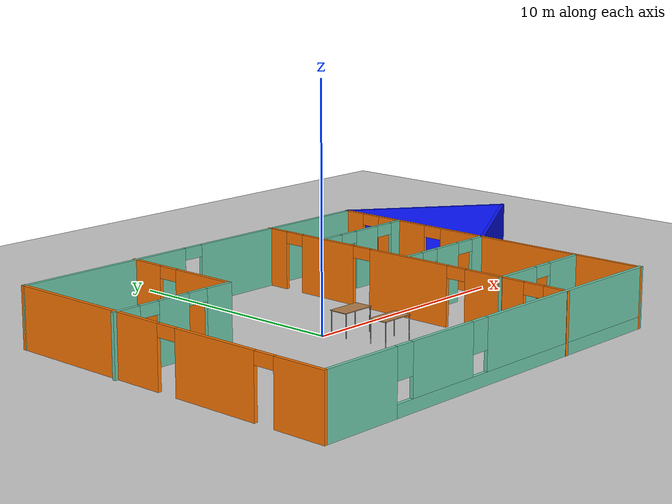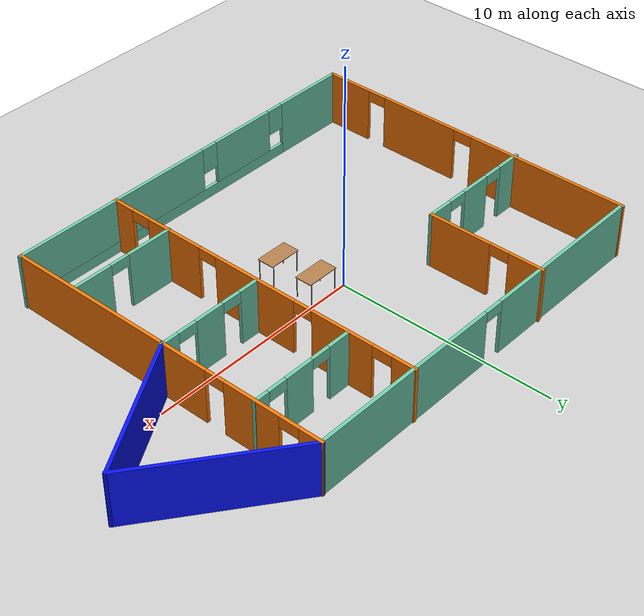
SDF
<sdf version="1.6">
 <world name="default">
  <model name="ground_plane">
   <static>1</static>
   <link name="link">
    <collision name="collision">
     <geometry><plane><normal>0 0 1</normal><size>100 100</size></plane></geometry>
     <surface>
      <contact><collide_bitmask>65535</collide_bitmask></contact>
      <friction><ode><mu>100</mu><mu2>50</mu2></ode></friction>
     </surface>
    </collision>
    <visual name="visual">
     <cast_shadows>0</cast_shadows>
     <geometry><plane><normal>0 0 1</normal><size>100 100</size></plane></geometry>
     <material>
      <script><uri>file://media/materials/scripts/gazebo.material</uri><name>Gazebo/Grey</name></script>
     </material>
    </visual>
   </link>
  </model>
  <model name="Building">
   <pose>2.98663 -0.6582 0 0 -0 0</pose>
   <link name="Wall_0">
    <pose>-2.80813 7.61358 0 0 0 -0.001099</pose>
    <visual name="Wall_0_Visual_0">
     <pose>-4.97895 0 1.25 0 -0 0</pose>
     <geometry><box><size>8.08618 0.15 2.5</size></box></geometry>
     <material>
      <script><uri>file://media/materials/scripts/gazebo.material</uri><name>Gazebo/Grey</name></script>
      <ambient>0.435294 0.796078 0.67451 1</ambient>
     </material>
     <meta><layer>0</layer></meta>
    </visual>
    <collision name="Wall_0_Collision_0">
     <geometry><box><size>8.08618 0.15 2.5</size></box></geometry>
     <pose>-4.97895 0 1.25 0 -0 0</pose>
    </collision>
    <visual name="Wall_0_Visual_1">
     <pose>4.49309 0 1.25 0 -0 0</pose>
     <geometry><box><size>9.0579 0.15 2.5</size></box></geometry>
     <material>
      <script><uri>file://media/materials/scripts/gazebo.material</uri><name>Gazebo/Grey</name></script>
      <ambient>0.435294 0.796078 0.67451 1</ambient>
     </material>
     <meta><layer>0</layer></meta>
    </visual>
    <collision name="Wall_0_Collision_1">
     <geometry><box><size>9.0579 0.15 2.5</size></box></geometry>
     <pose>4.49309 0 1.25 0 -0 0</pose>
    </collision>
    <visual name="Wall_0_Visual_2">
     <pose>-0.485857 0 2.25 0 -0 0</pose>
     <geometry><box><size>0.9 0.15 0.5</size></box></geometry>
     <material>
      <script><uri>file://media/materials/scripts/gazebo.material</uri><name>Gazebo/Grey</name></script>
      <ambient>0.435294 0.796078 0.67451 1</ambient>
     </material>
     <meta><layer>0</layer></meta>
    </visual>
    <collision name="Wall_0_Collision_2">
     <geometry><box><size>0.9 0.15 0.5</size></box></geometry>
     <pose>-0.485857 0 2.25 0 -0 0</pose>
    </collision>
   </link>
   <link name="Wall_11">
    <pose>3.73817 4.58148 0 0 -0 0</pose>
    <visual name="Wall_11_Visual_0">
     <pose>-1.93324 0 1.25 0 -0 0</pose>
     <geometry><box><size>1.13352 0.15 2.5</size></box></geometry>
     <material>
      <script><uri>file://media/materials/scripts/gazebo.material</uri><name>Gazebo/Grey</name></script>
      <ambient>0.435294 0.796078 0.67451 1</ambient>
     </material>
     <meta><layer>0</layer></meta>
    </visual>
    <collision name="Wall_11_Collision_0">
     <geometry><box><size>1.13352 0.15 2.5</size></box></geometry>
     <pose>-1.93324 0 1.25 0 -0 0</pose>
    </collision>
    <visual name="Wall_11_Visual_1">
     <pose>0.209239 0 1.25 0 -0 0</pose>
     <geometry><box><size>1.35144 0.15 2.5</size></box></geometry>
     <material>
      <script><uri>file://media/materials/scripts/gazebo.material</uri><name>Gazebo/Grey</name></script>
      <ambient>0.435294 0.796078 0.67451 1</ambient>
     </material>
     <meta><layer>0</layer></meta>
    </visual>
    <collision name="Wall_11_Collision_1">
     <geometry><box><size>1.35144 0.15 2.5</size></box></geometry>
     <pose>0.209239 0 1.25 0 -0 0</pose>
    </collision>
    <visual name="Wall_11_Visual_2">
     <pose>2.14248 0 1.25 0 -0 0</pose>
     <geometry><box><size>0.71504 0.15 2.5</size></box></geometry>
     <material>
      <script><uri>file://media/materials/scripts/gazebo.material</uri><name>Gazebo/Grey</name></script>
      <ambient>0.435294 0.796078 0.67451 1</ambient>
     </material>
     <meta><layer>0</layer></meta>
    </visual>
    <collision name="Wall_11_Collision_2">
     <geometry><box><size>0.71504 0.15 2.5</size></box></geometry>
     <pose>2.14248 0 1.25 0 -0 0</pose>
    </collision>
    <visual name="Wall_11_Visual_3">
     <pose>-0.916481 0 2.25 0 -0 0</pose>
     <geometry><box><size>0.9 0.15 0.5</size></box></geometry>
     <material>
      <script><uri>file://media/materials/scripts/gazebo.material</uri><name>Gazebo/Grey</name></script>
      <ambient>0.435294 0.796078 0.67451 1</ambient>
     </material>
     <meta><layer>0</layer></meta>
    </visual>
    <collision name="Wall_11_Collision_3">
     <geometry><box><size>0.9 0.15 0.5</size></box></geometry>
     <pose>-0.916481 0 2.25 0 -0 0</pose>
    </collision>
    <visual name="Wall_11_Visual_4">
     <pose>1.33496 0 2.25 0 -0 0</pose>
     <geometry><box><size>0.9 0.15 0.5</size></box></geometry>
     <material>
      <script><uri>file://media/materials/scripts/gazebo.material</uri><name>Gazebo/Grey</name></script>
      <ambient>0.435294 0.796078 0.67451 1</ambient>
     </material>
     <meta><layer>0</layer></meta>
    </visual>
    <collision name="Wall_11_Collision_4">
     <geometry><box><size>0.9 0.15 0.5</size></box></geometry>
     <pose>1.33496 0 2.25 0 -0 0</pose>
    </collision>
   </link>
   <link name="Wall_13">
    <pose>3.77862 0.050456 0 0 -0 0</pose>
    <visual name="Wall_13_Visual_0">
     <pose>-2.02383 0 1.25 0 -0 0</pose>
     <geometry><box><size>0.952349 0.15 2.5</size></box></geometry>
     <material>
      <script><uri>file://media/materials/scripts/gazebo.material</uri><name>Gazebo/Grey</name></script>
      <ambient>0.435294 0.796078 0.67451 1</ambient>
     </material>
     <meta><layer>0</layer></meta>
    </visual>
    <collision name="Wall_13_Collision_0">
     <geometry><box><size>0.952349 0.15 2.5</size></box></geometry>
     <pose>-2.02383 0 1.25 0 -0 0</pose>
    </collision>
    <visual name="Wall_13_Visual_1">
     <pose>0.041638 0 1.25 0 -0 0</pose>
     <geometry><box><size>1.37858 0.15 2.5</size></box></geometry>
     <material>
      <script><uri>file://media/materials/scripts/gazebo.material</uri><name>Gazebo/Grey</name></script>
      <ambient>0.435294 0.796078 0.67451 1</ambient>
     </material>
     <meta><layer>0</layer></meta>
    </visual>
    <collision name="Wall_13_Collision_1">
     <geometry><box><size>1.37858 0.15 2.5</size></box></geometry>
     <pose>0.041638 0 1.25 0 -0 0</pose>
    </collision>
    <visual name="Wall_13_Visual_2">
     <pose>2.06546 0 1.25 0 -0 0</pose>
     <geometry><box><size>0.869072 0.15 2.5</size></box></geometry>
     <material>
      <script><uri>file://media/materials/scripts/gazebo.material</uri><name>Gazebo/Grey</name></script>
      <ambient>0.435294 0.796078 0.67451 1</ambient>
     </material>
     <meta><layer>0</layer></meta>
    </visual>
    <collision name="Wall_13_Collision_2">
     <geometry><box><size>0.869072 0.15 2.5</size></box></geometry>
     <pose>2.06546 0 1.25 0 -0 0</pose>
    </collision>
    <visual name="Wall_13_Visual_3">
     <pose>-1.09765 0 2.25 0 -0 0</pose>
     <geometry><box><size>0.9 0.15 0.5</size></box></geometry>
     <material>
      <script><uri>file://media/materials/scripts/gazebo.material</uri><name>Gazebo/Grey</name></script>
      <ambient>0.435294 0.796078 0.67451 1</ambient>
     </material>
     <meta><layer>0</layer></meta>
    </visual>
    <collision name="Wall_13_Collision_3">
     <geometry><box><size>0.9 0.15 0.5</size></box></geometry>
     <pose>-1.09765 0 2.25 0 -0 0</pose>
    </collision>
    <visual name="Wall_13_Visual_4">
     <pose>1.18093 0 2.25 0 -0 0</pose>
     <geometry><box><size>0.9 0.15 0.5</size></box></geometry>
     <material>
      <script><uri>file://media/materials/scripts/gazebo.material</uri><name>Gazebo/Grey</name></script>
      <ambient>0.435294 0.796078 0.67451 1</ambient>
     </material>
     <meta><layer>0</layer></meta>
    </visual>
    <collision name="Wall_13_Collision_4">
     <geometry><box><size>0.9 0.15 0.5</size></box></geometry>
     <pose>1.18093 0 2.25 0 -0 0</pose>
    </collision>
   </link>
   <link name="Wall_15">
    <pose>3.67214 -4.70387 0 0 -0 0</pose>
    <visual name="Wall_15_Visual_0">
     <pose>-1.37973 0 1.25 0 -0 0</pose>
     <geometry><box><size>2.24055 0.15 2.5</size></box></geometry>
     <material>
      <script><uri>file://media/materials/scripts/gazebo.material</uri><name>Gazebo/Grey</name></script>
      <ambient>0.435294 0.796078 0.67451 1</ambient>
     </material>
     <meta><layer>0</layer></meta>
    </visual>
    <collision name="Wall_15_Collision_0">
     <geometry><box><size>2.24055 0.15 2.5</size></box></geometry>
     <pose>-1.37973 0 1.25 0 -0 0</pose>
    </collision>
    <visual name="Wall_15_Visual_1">
     <pose>1.57028 0 1.25 0 -0 0</pose>
     <geometry><box><size>1.85945 0.15 2.5</size></box></geometry>
     <material>
      <script><uri>file://media/materials/scripts/gazebo.material</uri><name>Gazebo/Grey</name></script>
      <ambient>0.435294 0.796078 0.67451 1</ambient>
     </material>
     <meta><layer>0</layer></meta>
    </visual>
    <collision name="Wall_15_Collision_1">
     <geometry><box><size>1.85945 0.15 2.5</size></box></geometry>
     <pose>1.57028 0 1.25 0 -0 0</pose>
    </collision>
    <visual name="Wall_15_Visual_2">
     <pose>0.190549 0 2.25 0 -0 0</pose>
     <geometry><box><size>0.9 0.15 0.5</size></box></geometry>
     <material>
      <script><uri>file://media/materials/scripts/gazebo.material</uri><name>Gazebo/Grey</name></script>
      <ambient>0.435294 0.796078 0.67451 1</ambient>
     </material>
     <meta><layer>0</layer></meta>
    </visual>
    <collision name="Wall_15_Collision_2">
     <geometry><box><size>0.9 0.15 0.5</size></box></geometry>
     <pose>0.190549 0 2.25 0 -0 0</pose>
    </collision>
   </link>
   <link name="Wall_17">
    <collision name="Wall_17_Collision">
     <geometry><box><size>6.75 0.15 2.5</size></box></geometry>
     <pose>0 0 1.25 0 -0 0</pose>
    </collision>
    <visual name="Wall_17_Visual">
     <pose>0 0 1.25 0 -0 0</pose>
     <geometry><box><size>6.75 0.15 2.5</size></box></geometry>
     <material>
      <script><uri>file://media/materials/scripts/gazebo.material</uri><name>Gazebo/Grey</name></script>
      <ambient>0.0313726 0.0784314 1 1</ambient>
     </material>
     <meta><layer>0</layer></meta>
    </visual>
    <pose>9.00455 1.66326 0 0 -0 0.523599</pose>
   </link>
   <link name="Wall_18">
    <collision name="Wall_18_Collision">
     <geometry><box><size>7.31911 0.15 2.5</size></box></geometry>
     <pose>0 0 1.25 0 -0 0</pose>
    </collision>
    <visual name="Wall_18_Visual">
     <pose>0 0 1.25 0 -0 0</pose>
     <geometry><box><size>7.31911 0.15 2.5</size></box></geometry>
     <material>
      <script><uri>file://media/materials/scripts/gazebo.material</uri><name>Gazebo/Grey</name></script>
      <ambient>0.0313726 0.0784314 1 1</ambient>
     </material>
     <meta><layer>0</layer></meta>
    </visual>
    <pose>9.00067 5.47181 0 0 -0 2.49536</pose>
   </link>
   <link name="Wall_2">
    <pose>-11.7501 0.006796 0 0 0 -1.57013</pose>
    <visual name="Wall_2_Visual_0">
     <pose>-3.93136 0 1.25 0 -0 0</pose>
     <geometry><box><size>7.57372 0.15 2.5</size></box></geometry>
     <material>
      <script><uri>file://media/materials/scripts/gazebo.material</uri><name>Gazebo/Grey</name></script>
      <ambient>0.996078 0.47451 0.0196078 1</ambient>
     </material>
     <meta><layer>0</layer></meta>
    </visual>
    <collision name="Wall_2_Collision_0">
     <geometry><box><size>7.57372 0.15 2.5</size></box></geometry>
     <pose>-3.93136 0 1.25 0 -0 0</pose>
    </collision>
    <visual name="Wall_2_Visual_1">
     <pose>2.66282 0 1.25 0 -0 0</pose>
     <geometry><box><size>3.81463 0.15 2.5</size></box></geometry>
     <material>
      <script><uri>file://media/materials/scripts/gazebo.material</uri><name>Gazebo/Grey</name></script>
      <ambient>0.996078 0.47451 0.0196078 1</ambient>
     </material>
     <meta><layer>0</layer></meta>
    </visual>
    <collision name="Wall_2_Collision_1">
     <geometry><box><size>3.81463 0.15 2.5</size></box></geometry>
     <pose>2.66282 0 1.25 0 -0 0</pose>
    </collision>
    <visual name="Wall_2_Visual_2">
     <pose>6.59418 0 1.25 0 -0 0</pose>
     <geometry><box><size>2.24808 0.15 2.5</size></box></geometry>
     <material>
      <script><uri>file://media/materials/scripts/gazebo.material</uri><name>Gazebo/Grey</name></script>
      <ambient>0.996078 0.47451 0.0196078 1</ambient>
     </material>
     <meta><layer>0</layer></meta>
    </visual>
    <collision name="Wall_2_Collision_2">
     <geometry><box><size>2.24808 0.15 2.5</size></box></geometry>
     <pose>6.59418 0 1.25 0 -0 0</pose>
    </collision>
    <visual name="Wall_2_Visual_3">
     <pose>0.305505 0 2.25 0 -0 0</pose>
     <geometry><box><size>0.9 0.15 0.5</size></box></geometry>
     <material>
      <script><uri>file://media/materials/scripts/gazebo.material</uri><name>Gazebo/Grey</name></script>
      <ambient>0.996078 0.47451 0.0196078 1</ambient>
     </material>
     <meta><layer>0</layer></meta>
    </visual>
    <collision name="Wall_2_Collision_3">
     <geometry><box><size>0.9 0.15 0.5</size></box></geometry>
     <pose>0.305505 0 2.25 0 -0 0</pose>
    </collision>
    <visual name="Wall_2_Visual_4">
     <pose>5.02014 0 2.25 0 -0 0</pose>
     <geometry><box><size>0.9 0.15 0.5</size></box></geometry>
     <material>
      <script><uri>file://media/materials/scripts/gazebo.material</uri><name>Gazebo/Grey</name></script>
      <ambient>0.996078 0.47451 0.0196078 1</ambient>
     </material>
     <meta><layer>0</layer></meta>
    </visual>
    <collision name="Wall_2_Collision_4">
     <geometry><box><size>0.9 0.15 0.5</size></box></geometry>
     <pose>5.02014 0 2.25 0 -0 0</pose>
    </collision>
   </link>
   <link name="Wall_3">
    <pose>-2.75147 -7.66637 0 0 0 -0.003347</pose>
    <visual name="Wall_3_Visual_0">
     <pose>-7.29617 0 1.25 0 -0 0</pose>
     <geometry><box><size>3.45183 0.15 2.5</size></box></geometry>
     <material>
      <script><uri>file://media/materials/scripts/gazebo.material</uri><name>Gazebo/Grey</name></script>
      <ambient>0.435294 0.796078 0.67451 1</ambient>
     </material>
     <meta><layer>0</layer></meta>
    </visual>
    <collision name="Wall_3_Collision_0">
     <geometry><box><size>3.45183 0.15 2.5</size></box></geometry>
     <pose>-7.29617 0 1.25 0 -0 0</pose>
    </collision>
    <visual name="Wall_3_Visual_1">
     <pose>1.72591 0 0.25 0 -0 0</pose>
     <geometry><box><size>14.5923 0.15 0.5</size></box></geometry>
     <material>
      <script><uri>file://media/materials/scripts/gazebo.material</uri><name>Gazebo/Grey</name></script>
      <ambient>0.435294 0.796078 0.67451 1</ambient>
     </material>
     <meta><layer>0</layer></meta>
    </visual>
    <collision name="Wall_3_Collision_1">
     <geometry><box><size>14.5923 0.15 0.5</size></box></geometry>
     <pose>1.72591 0 0.25 0 -0 0</pose>
    </collision>
    <visual name="Wall_3_Visual_2">
     <pose>-3.16851 0 1.5 0 -0 0</pose>
     <geometry><box><size>3.2035 0.15 2</size></box></geometry>
     <material>
      <script><uri>file://media/materials/scripts/gazebo.material</uri><name>Gazebo/Grey</name></script>
      <ambient>0.435294 0.796078 0.67451 1</ambient>
     </material>
     <meta><layer>0</layer></meta>
    </visual>
    <collision name="Wall_3_Collision_2">
     <geometry><box><size>3.2035 0.15 2</size></box></geometry>
     <pose>-3.16851 0 1.5 0 -0 0</pose>
    </collision>
    <visual name="Wall_3_Visual_3">
     <pose>4.12766 0 1.5 0 -0 0</pose>
     <geometry><box><size>9.78884 0.15 2</size></box></geometry>
     <material>
      <script><uri>file://media/materials/scripts/gazebo.material</uri><name>Gazebo/Grey</name></script>
      <ambient>0.435294 0.796078 0.67451 1</ambient>
     </material>
     <meta><layer>0</layer></meta>
    </visual>
    <collision name="Wall_3_Collision_3">
     <geometry><box><size>9.78884 0.15 2</size></box></geometry>
     <pose>4.12766 0 1.5 0 -0 0</pose>
    </collision>
    <visual name="Wall_3_Visual_4">
     <pose>-5.17026 0 1.9 0 -0 0</pose>
     <geometry><box><size>0.8 0.15 1.2</size></box></geometry>
     <material>
      <script><uri>file://media/materials/scripts/gazebo.material</uri><name>Gazebo/Grey</name></script>
      <ambient>0.435294 0.796078 0.67451 1</ambient>
     </material>
     <meta><layer>0</layer></meta>
    </visual>
    <collision name="Wall_3_Collision_4">
     <geometry><box><size>0.8 0.15 1.2</size></box></geometry>
     <pose>-5.17026 0 1.9 0 -0 0</pose>
    </collision>
    <visual name="Wall_3_Visual_5">
     <pose>-1.16676 0 1.9 0 -0 0</pose>
     <geometry><box><size>0.8 0.15 1.2</size></box></geometry>
     <material>
      <script><uri>file://media/materials/scripts/gazebo.material</uri><name>Gazebo/Grey</name></script>
      <ambient>0.435294 0.796078 0.67451 1</ambient>
     </material>
     <meta><layer>0</layer></meta>
    </visual>
    <collision name="Wall_3_Collision_5">
     <geometry><box><size>0.8 0.15 1.2</size></box></geometry>
     <pose>-1.16676 0 1.9 0 -0 0</pose>
    </collision>
   </link>
   <link name="Wall_4">
    <pose>6.14398 -0.032979 0 0 -0 1.57146</pose>
    <visual name="Wall_4_Visual_0">
     <pose>-2.74852 0 1.25 0 -0 0</pose>
     <geometry><box><size>9.97962 0.15 2.5</size></box></geometry>
     <material>
      <script><uri>file://media/materials/scripts/gazebo.material</uri><name>Gazebo/Grey</name></script>
      <ambient>0.996078 0.47451 0.0196078 1</ambient>
     </material>
     <meta><layer>0</layer></meta>
    </visual>
    <collision name="Wall_4_Collision_0">
     <geometry><box><size>9.97962 0.15 2.5</size></box></geometry>
     <pose>-2.74852 0 1.25 0 -0 0</pose>
    </collision>
    <visual name="Wall_4_Visual_1">
     <pose>4.45026 0 1.25 0 -0 0</pose>
     <geometry><box><size>2.61795 0.15 2.5</size></box></geometry>
     <material>
      <script><uri>file://media/materials/scripts/gazebo.material</uri><name>Gazebo/Grey</name></script>
      <ambient>0.996078 0.47451 0.0196078 1</ambient>
     </material>
     <meta><layer>0</layer></meta>
    </visual>
    <collision name="Wall_4_Collision_1">
     <geometry><box><size>2.61795 0.15 2.5</size></box></geometry>
     <pose>4.45026 0 1.25 0 -0 0</pose>
    </collision>
    <visual name="Wall_4_Visual_2">
     <pose>7.19878 0 1.25 0 -0 0</pose>
     <geometry><box><size>1.0791 0.15 2.5</size></box></geometry>
     <material>
      <script><uri>file://media/materials/scripts/gazebo.material</uri><name>Gazebo/Grey</name></script>
      <ambient>0.996078 0.47451 0.0196078 1</ambient>
     </material>
     <meta><layer>0</layer></meta>
    </visual>
    <collision name="Wall_4_Collision_2">
     <geometry><box><size>1.0791 0.15 2.5</size></box></geometry>
     <pose>7.19878 0 1.25 0 -0 0</pose>
    </collision>
    <visual name="Wall_4_Visual_3">
     <pose>2.69129 0 2.25 0 -0 0</pose>
     <geometry><box><size>0.9 0.15 0.5</size></box></geometry>
     <material>
      <script><uri>file://media/materials/scripts/gazebo.material</uri><name>Gazebo/Grey</name></script>
      <ambient>0.996078 0.47451 0.0196078 1</ambient>
     </material>
     <meta><layer>0</layer></meta>
    </visual>
    <collision name="Wall_4_Collision_3">
     <geometry><box><size>0.9 0.15 0.5</size></box></geometry>
     <pose>2.69129 0 2.25 0 -0 0</pose>
    </collision>
    <visual name="Wall_4_Visual_4">
     <pose>6.20924 0 2.25 0 -0 0</pose>
     <geometry><box><size>0.9 0.15 0.5</size></box></geometry>
     <material>
      <script><uri>file://media/materials/scripts/gazebo.material</uri><name>Gazebo/Grey</name></script>
      <ambient>0.996078 0.47451 0.0196078 1</ambient>
     </material>
     <meta><layer>0</layer></meta>
    </visual>
    <collision name="Wall_4_Collision_4">
     <geometry><box><size>0.9 0.15 0.5</size></box></geometry>
     <pose>6.20924 0 2.25 0 -0 0</pose>
    </collision>
   </link>
   <link name="Wall_6">
    <pose>-6.29248 5.02156 0 0 0 -1.5708</pose>
    <visual name="Wall_6_Visual_0">
     <pose>-1.93476 0 1.25 0 -0 0</pose>
     <geometry><box><size>1.63049 0.15 2.5</size></box></geometry>
     <material>
      <script><uri>file://media/materials/scripts/gazebo.material</uri><name>Gazebo/Grey</name></script>
      <ambient>0.996078 0.47451 0.0196078 1</ambient>
     </material>
     <meta><layer>0</layer></meta>
    </visual>
    <collision name="Wall_6_Collision_0">
     <geometry><box><size>1.63049 0.15 2.5</size></box></geometry>
     <pose>-1.93476 0 1.25 0 -0 0</pose>
    </collision>
    <visual name="Wall_6_Visual_1">
     <pose>1.26524 0 1.25 0 -0 0</pose>
     <geometry><box><size>2.96951 0.15 2.5</size></box></geometry>
     <material>
      <script><uri>file://media/materials/scripts/gazebo.material</uri><name>Gazebo/Grey</name></script>
      <ambient>0.996078 0.47451 0.0196078 1</ambient>
     </material>
     <meta><layer>0</layer></meta>
    </visual>
    <collision name="Wall_6_Collision_1">
     <geometry><box><size>2.96951 0.15 2.5</size></box></geometry>
     <pose>1.26524 0 1.25 0 -0 0</pose>
    </collision>
    <visual name="Wall_6_Visual_2">
     <pose>-0.669512 0 2.25 0 -0 0</pose>
     <geometry><box><size>0.9 0.15 0.5</size></box></geometry>
     <material>
      <script><uri>file://media/materials/scripts/gazebo.material</uri><name>Gazebo/Grey</name></script>
      <ambient>0.996078 0.47451 0.0196078 1</ambient>
     </material>
     <meta><layer>0</layer></meta>
    </visual>
    <collision name="Wall_6_Collision_2">
     <geometry><box><size>0.9 0.15 0.5</size></box></geometry>
     <pose>-0.669512 0 2.25 0 -0 0</pose>
    </collision>
   </link>
   <link name="Wall_7">
    <pose>-9.09248 2.34656 0 0 -0 3.14159</pose>
    <visual name="Wall_7_Visual_0">
     <pose>-2.24817 0 1.25 0 -0 0</pose>
     <geometry><box><size>1.25366 0.15 2.5</size></box></geometry>
     <material>
      <script><uri>file://media/materials/scripts/gazebo.material</uri><name>Gazebo/Grey</name></script>
      <ambient>0.435294 0.796078 0.67451 1</ambient>
     </material>
     <meta><layer>0</layer></meta>
    </visual>
    <collision name="Wall_7_Collision_0">
     <geometry><box><size>1.25366 0.15 2.5</size></box></geometry>
     <pose>-2.24817 0 1.25 0 -0 0</pose>
    </collision>
    <visual name="Wall_7_Visual_1">
     <pose>0.006381 0 1.25 0 -0 0</pose>
     <geometry><box><size>1.45545 0.15 2.5</size></box></geometry>
     <material>
      <script><uri>file://media/materials/scripts/gazebo.material</uri><name>Gazebo/Grey</name></script>
      <ambient>0.435294 0.796078 0.67451 1</ambient>
     </material>
     <meta><layer>0</layer></meta>
    </visual>
    <collision name="Wall_7_Collision_1">
     <geometry><box><size>1.45545 0.15 2.5</size></box></geometry>
     <pose>0.006381 0 1.25 0 -0 0</pose>
    </collision>
    <visual name="Wall_7_Visual_2">
     <pose>2.25455 0 1.25 0 -0 0</pose>
     <geometry><box><size>1.2409 0.15 2.5</size></box></geometry>
     <material>
      <script><uri>file://media/materials/scripts/gazebo.material</uri><name>Gazebo/Grey</name></script>
      <ambient>0.435294 0.796078 0.67451 1</ambient>
     </material>
     <meta><layer>0</layer></meta>
    </visual>
    <collision name="Wall_7_Collision_2">
     <geometry><box><size>1.2409 0.15 2.5</size></box></geometry>
     <pose>2.25455 0 1.25 0 -0 0</pose>
    </collision>
    <visual name="Wall_7_Visual_3">
     <pose>-1.17134 0 2.25 0 -0 0</pose>
     <geometry><box><size>0.9 0.15 0.5</size></box></geometry>
     <material>
      <script><uri>file://media/materials/scripts/gazebo.material</uri><name>Gazebo/Grey</name></script>
      <ambient>0.435294 0.796078 0.67451 1</ambient>
     </material>
     <meta><layer>0</layer></meta>
    </visual>
    <collision name="Wall_7_Collision_3">
     <geometry><box><size>0.9 0.15 0.5</size></box></geometry>
     <pose>-1.17134 0 2.25 0 -0 0</pose>
    </collision>
    <visual name="Wall_7_Visual_4">
     <pose>1.1841 0 2.25 0 -0 0</pose>
     <geometry><box><size>0.9 0.15 0.5</size></box></geometry>
     <material>
      <script><uri>file://media/materials/scripts/gazebo.material</uri><name>Gazebo/Grey</name></script>
      <ambient>0.435294 0.796078 0.67451 1</ambient>
     </material>
     <meta><layer>0</layer></meta>
    </visual>
    <collision name="Wall_7_Collision_4">
     <geometry><box><size>0.9 0.15 0.5</size></box></geometry>
     <pose>1.1841 0 2.25 0 -0 0</pose>
    </collision>
   </link>
   <link name="Wall_9">
    <pose>1.27271 -0.018895 0 0 0 -1.5708</pose>
    <visual name="Wall_9_Visual_0">
     <pose>-7.19971 0 1.25 0 -0 0</pose>
     <geometry><box><size>1.10059 0.15 2.5</size></box></geometry>
     <material>
      <script><uri>file://media/materials/scripts/gazebo.material</uri><name>Gazebo/Grey</name></script>
      <ambient>0.996078 0.47451 0.0196078 1</ambient>
     </material>
     <meta><layer>0</layer></meta>
    </visual>
    <collision name="Wall_9_Collision_0">
     <geometry><box><size>1.10059 0.15 2.5</size></box></geometry>
     <pose>-7.19971 0 1.25 0 -0 0</pose>
    </collision>
    <visual name="Wall_9_Visual_1">
     <pose>-4.30282 0 1.25 0 -0 0</pose>
     <geometry><box><size>2.89319 0.15 2.5</size></box></geometry>
     <material>
      <script><uri>file://media/materials/scripts/gazebo.material</uri><name>Gazebo/Grey</name></script>
      <ambient>0.996078 0.47451 0.0196078 1</ambient>
     </material>
     <meta><layer>0</layer></meta>
    </visual>
    <collision name="Wall_9_Collision_1">
     <geometry><box><size>2.89319 0.15 2.5</size></box></geometry>
     <pose>-4.30282 0 1.25 0 -0 0</pose>
    </collision>
    <visual name="Wall_9_Visual_2">
     <pose>0.049995 0 1.25 0 -0 0</pose>
     <geometry><box><size>4.01244 0.15 2.5</size></box></geometry>
     <material>
      <script><uri>file://media/materials/scripts/gazebo.material</uri><name>Gazebo/Grey</name></script>
      <ambient>0.996078 0.47451 0.0196078 1</ambient>
     </material>
     <meta><layer>0</layer></meta>
    </visual>
    <collision name="Wall_9_Collision_2">
     <geometry><box><size>4.01244 0.15 2.5</size></box></geometry>
     <pose>0.049995 0 1.25 0 -0 0</pose>
    </collision>
    <visual name="Wall_9_Visual_3">
     <pose>4.35692 0 1.25 0 -0 0</pose>
     <geometry><box><size>2.80142 0.15 2.5</size></box></geometry>
     <material>
      <script><uri>file://media/materials/scripts/gazebo.material</uri><name>Gazebo/Grey</name></script>
      <ambient>0.996078 0.47451 0.0196078 1</ambient>
     </material>
     <meta><layer>0</layer></meta>
    </visual>
    <collision name="Wall_9_Collision_3">
     <geometry><box><size>2.80142 0.15 2.5</size></box></geometry>
     <pose>4.35692 0 1.25 0 -0 0</pose>
    </collision>
    <visual name="Wall_9_Visual_4">
     <pose>7.20381 0 1.25 0 -0 0</pose>
     <geometry><box><size>1.09237 0.15 2.5</size></box></geometry>
     <material>
      <script><uri>file://media/materials/scripts/gazebo.material</uri><name>Gazebo/Grey</name></script>
      <ambient>0.996078 0.47451 0.0196078 1</ambient>
     </material>
     <meta><layer>0</layer></meta>
    </visual>
    <collision name="Wall_9_Collision_4">
     <geometry><box><size>1.09237 0.15 2.5</size></box></geometry>
     <pose>7.20381 0 1.25 0 -0 0</pose>
    </collision>
    <visual name="Wall_9_Visual_5">
     <pose>-6.19941 0 2.25 0 -0 0</pose>
     <geometry><box><size>0.9 0.15 0.5</size></box></geometry>
     <material>
      <script><uri>file://media/materials/scripts/gazebo.material</uri><name>Gazebo/Grey</name></script>
      <ambient>0.996078 0.47451 0.0196078 1</ambient>
     </material>
     <meta><layer>0</layer></meta>
    </visual>
    <collision name="Wall_9_Collision_5">
     <geometry><box><size>0.9 0.15 0.5</size></box></geometry>
     <pose>-6.19941 0 2.25 0 -0 0</pose>
    </collision>
    <visual name="Wall_9_Visual_6">
     <pose>-2.40622 0 2.25 0 -0 0</pose>
     <geometry><box><size>0.9 0.15 0.5</size></box></geometry>
     <material>
      <script><uri>file://media/materials/scripts/gazebo.material</uri><name>Gazebo/Grey</name></script>
      <ambient>0.996078 0.47451 0.0196078 1</ambient>
     </material>
     <meta><layer>0</layer></meta>
    </visual>
    <collision name="Wall_9_Collision_6">
     <geometry><box><size>0.9 0.15 0.5</size></box></geometry>
     <pose>-2.40622 0 2.25 0 -0 0</pose>
    </collision>
    <visual name="Wall_9_Visual_7">
     <pose>2.50621 0 2.25 0 -0 0</pose>
     <geometry><box><size>0.9 0.15 0.5</size></box></geometry>
     <material>
      <script><uri>file://media/materials/scripts/gazebo.material</uri><name>Gazebo/Grey</name></script>
      <ambient>0.996078 0.47451 0.0196078 1</ambient>
     </material>
     <meta><layer>0</layer></meta>
    </visual>
    <collision name="Wall_9_Collision_7">
     <geometry><box><size>0.9 0.15 0.5</size></box></geometry>
     <pose>2.50621 0 2.25 0 -0 0</pose>
    </collision>
    <visual name="Wall_9_Visual_8">
     <pose>6.20763 0 2.25 0 -0 0</pose>
     <geometry><box><size>0.9 0.15 0.5</size></box></geometry>
     <material>
      <script><uri>file://media/materials/scripts/gazebo.material</uri><name>Gazebo/Grey</name></script>
      <ambient>0.996078 0.47451 0.0196078 1</ambient>
     </material>
     <meta><layer>0</layer></meta>
    </visual>
    <collision name="Wall_9_Collision_8">
     <geometry><box><size>0.9 0.15 0.5</size></box></geometry>
     <pose>6.20763 0 2.25 0 -0 0</pose>
    </collision>
   </link>
   <static>1</static>
  </model>
  <model name="table_0">
   <static>1</static>
   <link name="link">
    <collision name="surface">
     <pose>0 0 1 0 -0 0</pose>
     <geometry><box><size>1.5 0.8 0.03</size></box></geometry>
     <surface><friction><ode><mu>0.6</mu><mu2>0.6</mu2></ode></friction></surface>
    </collision>
    <visual name="visual1">
     <pose>0 0 1 0 -0 0</pose>
     <geometry><box><size>1.5 0.8 0.03</size></box></geometry>
     <material>
      <script><uri>file://media/materials/scripts/gazebo.material</uri><name>Gazebo/Wood</name></script>
     </material>
    </visual>
    <collision name="front_left_leg">
     <pose>0.68 0.38 0.5 0 -0 0</pose>
     <geometry><cylinder><radius>0.02</radius><length>1</length></cylinder></geometry>
    </collision>
    <visual name="front_left_leg">
     <pose>0.68 0.38 0.5 0 -0 0</pose>
     <geometry><cylinder><radius>0.02</radius><length>1</length></cylinder></geometry>
     <material>
      <script><uri>file://media/materials/scripts/gazebo.material</uri><name>Gazebo/Grey</name></script>
     </material>
    </visual>
    <collision name="front_right_leg">
     <pose>0.68 -0.38 0.5 0 -0 0</pose>
     <geometry><cylinder><radius>0.02</radius><length>1</length></cylinder></geometry>
    </collision>
    <visual name="front_right_leg">
     <pose>0.68 -0.38 0.5 0 -0 0</pose>
     <geometry><cylinder><radius>0.02</radius><length>1</length></cylinder></geometry>
     <material>
      <script><uri>file://media/materials/scripts/gazebo.material</uri><name>Gazebo/Grey</name></script>
     </material>
    </visual>
    <collision name="back_right_leg">
     <pose>-0.68 -0.38 0.5 0 -0 0</pose>
     <geometry><cylinder><radius>0.02</radius><length>1</length></cylinder></geometry>
    </collision>
    <visual name="back_right_leg">
     <pose>-0.68 -0.38 0.5 0 -0 0</pose>
     <geometry><cylinder><radius>0.02</radius><length>1</length></cylinder></geometry>
     <material>
      <script><uri>file://media/materials/scripts/gazebo.material</uri><name>Gazebo/Grey</name></script>
     </material>
    </visual>
    <collision name="back_left_leg">
     <pose>-0.68 0.38 0.5 0 -0 0</pose>
     <geometry><cylinder><radius>0.02</radius><length>1</length></cylinder></geometry>
    </collision>
    <visual name="back_left_leg">
     <pose>-0.68 0.38 0.5 0 -0 0</pose>
     <geometry><cylinder><radius>0.02</radius><length>1</length></cylinder></geometry>
     <material>
      <script><uri>file://media/materials/scripts/gazebo.material</uri><name>Gazebo/Grey</name></script>
     </material>
    </visual>
   </link>
   <pose>1.21649 -2.39679 0 0 -0 0</pose>
  </model>
  <model name="table_2">
   <static>1</static>
   <link name="link">
    <collision name="surface">
     <pose>0 0 1 0 -0 0</pose>
     <geometry><box><size>1.5 0.8 0.03</size></box></geometry>
     <surface><friction><ode><mu>0.6</mu><mu2>0.6</mu2></ode></friction></surface>
    </collision>
    <visual name="visual1">
     <pose>0 0 1 0 -0 0</pose>
     <geometry><box><size>1.5 0.8 0.03</size></box></geometry>
     <material>
      <script><uri>file://media/materials/scripts/gazebo.material</uri><name>Gazebo/Wood</name></script>
     </material>
    </visual>
    <collision name="front_left_leg">
     <pose>0.68 0.38 0.5 0 -0 0</pose>
     <geometry><cylinder><radius>0.02</radius><length>1</length></cylinder></geometry>
    </collision>
    <visual name="front_left_leg">
     <pose>0.68 0.38 0.5 0 -0 0</pose>
     <geometry><cylinder><radius>0.02</radius><length>1</length></cylinder></geometry>
     <material>
      <script><uri>file://media/materials/scripts/gazebo.material</uri><name>Gazebo/Grey</name></script>
     </material>
    </visual>
    <collision name="front_right_leg">
     <pose>0.68 -0.38 0.5 0 -0 0</pose>
     <geometry><cylinder><radius>0.02</radius><length>1</length></cylinder></geometry>
    </collision>
    <visual name="front_right_leg">
     <pose>0.68 -0.38 0.5 0 -0 0</pose>
     <geometry><cylinder><radius>0.02</radius><length>1</length></cylinder></geometry>
     <material>
      <script><uri>file://media/materials/scripts/gazebo.material</uri><name>Gazebo/Grey</name></script>
     </material>
    </visual>
    <collision name="back_right_leg">
     <pose>-0.68 -0.38 0.5 0 -0 0</pose>
     <geometry><cylinder><radius>0.02</radius><length>1</length></cylinder></geometry>
    </collision>
    <visual name="back_right_leg">
     <pose>-0.68 -0.38 0.5 0 -0 0</pose>
     <geometry><cylinder><radius>0.02</radius><length>1</length></cylinder></geometry>
     <material>
      <script><uri>file://media/materials/scripts/gazebo.material</uri><name>Gazebo/Grey</name></script>
     </material>
    </visual>
    <collision name="back_left_leg">
     <pose>-0.68 0.38 0.5 0 -0 0</pose>
     <geometry><cylinder><radius>0.02</radius><length>1</length></cylinder></geometry>
    </collision>
    <visual name="back_left_leg">
     <pose>-0.68 0.38 0.5 0 -0 0</pose>
     <geometry><cylinder><radius>0.02</radius><length>1</length></cylinder></geometry>
     <material>
      <script><uri>file://media/materials/scripts/gazebo.material</uri><name>Gazebo/Grey</name></script>
     </material>
    </visual>
   </link>
   <pose>1.07544 -0.518935 0 0 -0 0</pose>
  </model>
 </world>
</sdf>
